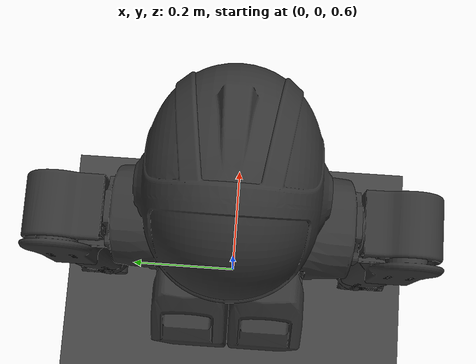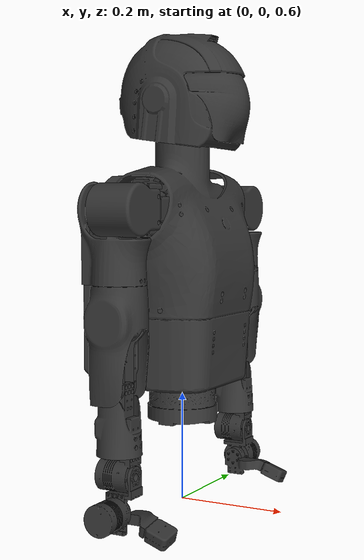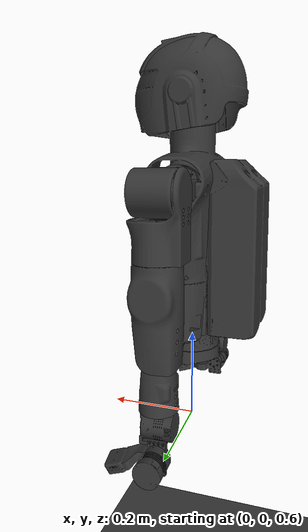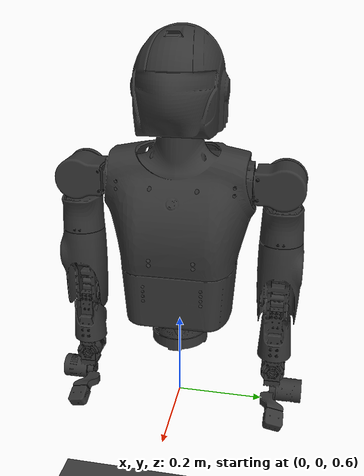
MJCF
<mujoco model="DARU_table_world">
  <compiler angle="radian" meshdir="" texturedir=""/>

  <default>
    <geom friction="1.0 0.5 0.01"/>
  </default>

  <asset>
    <texture name="grid" type="2d" builtin="checker" width="512" height="512"
            rgb1="0.2 0.2 0.2" rgb2="0.3 0.3 0.3" />
    <material name="floor_mat" texture="grid" texrepeat="200 200" specular="0.2" shininess="0.5" />
  </asset>

  <include file="DARU_stand.xml"/>

  <visual>
    <headlight ambient="0.7 0.7 0.7" diffuse="0.9 0.9 0.9" specular="0.4 0.4 0.4"/>
    <map znear="0.001" zfar="10"/>
  </visual>

  <worldbody>
    <light pos="0.5 0 3" dir="0 0 -1" diffuse="0.9 0.9 0.9"/>
    <geom name="floor" type="plane" size="100 100 0.1" material="floor_mat" />

  </worldbody>
</mujoco>

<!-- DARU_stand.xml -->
<mujoco model="DARU_stand">
  <compiler angle="radian"/>

  <asset>

    <mesh name="Base" content_type="model/stl" file="Base.stl"/>
    <mesh name="UB_Link" content_type="model/stl" file="UB_Link.stl"/>
    <mesh name="RSP_Link" content_type="model/stl" file="RSP_Link.stl"/>
    <mesh name="RSR_Link" content_type="model/stl" file="RSR_Link.stl"/>
    <mesh name="RSY_Link" content_type="model/stl" file="RSY_Link.stl"/>
    <mesh name="REP_Link" content_type="model/stl" file="REP_Link.stl"/>
    <mesh name="REY_Link" content_type="model/stl" file="REY_Link.stl"/>
    <mesh name="RWR_Link" content_type="model/stl" file="RWR_Link.stl"/>
    <mesh name="RWP_Link" content_type="model/stl" file="RWP_Link.stl"/>
    <mesh name="LSP_Link" content_type="model/stl" file="LSP_Link.stl"/>
    <mesh name="LSR_Link" content_type="model/stl" file="LSR_Link.stl"/>
    <mesh name="LSY_Link" content_type="model/stl" file="LSY_Link.stl"/>
    <mesh name="LEP_Link" content_type="model/stl" file="LEP_Link.stl"/>
    <mesh name="LEY_Link" content_type="model/stl" file="LEY_Link.stl"/>
    <mesh name="LWR_Link" content_type="model/stl" file="LWR_Link.stl"/>
    <mesh name="LWP_Link" content_type="model/stl" file="LWP_Link.stl"/>
    <mesh name="HY_Link" content_type="model/stl" file="HY_Link.stl"/>
    <mesh name="HP_Link" content_type="model/stl" file="HP_Link.stl"/>

    <material name="metal_silver"
            specular="0.5"
            shininess="1.0"
            reflectance="0.3"
            rgba="0.2 0.2 0.2 1"/>

  </asset>

<contact>
  <!-- trunk -->
  <exclude body1="Base"    body2="UB_Link"/>
  <exclude body1="UB_Link" body2="HY_Link"/>
  <exclude body1="HY_Link" body2="HP_Link"/>

  <!-- right arm (adjacent only) -->
  <exclude body1="UB_Link"  body2="RSP_Link"/>
  <exclude body1="RSP_Link" body2="RSR_Link"/>
  <exclude body1="RSR_Link" body2="RSY_Link"/>
  <exclude body1="RSY_Link" body2="REP_Link"/>
  <exclude body1="REP_Link" body2="REY_Link"/>
  <exclude body1="REY_Link" body2="RWR_Link"/>
  <exclude body1="RWR_Link" body2="RWP_Link"/>

  <!-- left arm (adjacent only) -->
  <exclude body1="UB_Link"  body2="LSP_Link"/>
  <exclude body1="LSP_Link" body2="LSR_Link"/>
  <exclude body1="LSR_Link" body2="LSY_Link"/>
  <exclude body1="LSY_Link" body2="LEP_Link"/>
  <exclude body1="LEP_Link" body2="LEY_Link"/>
  <exclude body1="LEY_Link" body2="LWR_Link"/>
  <exclude body1="LWR_Link" body2="LWP_Link"/>
</contact>

  <default>
    <default class="no_selfcol">
      <geom contype="0" conaffinity="0"/>
    </default>

    <default class="joint_mid">
      <joint damping="0.5" frictionloss="1.5"/>
    </default>
    <default class="joint_lo">
      <joint damping="0.01" frictionloss="0.1"/>
    </default>

    <default class="X12_150">
       <position kp="200" kv="10" forcerange="-150 150"/>
    </default>

    <default class="X6_60">
       <position kp="30" kv="0.8" forcerange="-60 60"/>
    </default>

    <default class="X4_10">
       <position kp="30" kv="0.8" forcerange="-10 10"/>
    </default>

    <default class="X2_07">
       <position kp="50" kv="2" forcerange="-7 7"/>
    </default>
  </default>

  <actuator>
    <!-- 허리 -->
    <position name="WY" class="X12_150" joint="Waist_Joint"
              ctrllimited="true" ctrlrange="-1.5708 1.5708"/>

    <!-- 오른팔 -->
    <position name="RSP" class="X6_60" joint="RSP_Joint"
              ctrllimited="true" ctrlrange="-4.460 0.837"/>
    <position name="RSR" class="X6_60" joint="RSR_Joint"
              ctrllimited="true" ctrlrange="-3.491 0.349"/>
    <position name="RSY" class="X6_60" joint="RSY_Joint"
              ctrllimited="true" ctrlrange="-2.87979 2.87979"/>
    <position name="REP" class="X6_60" joint="REP_Joint"
              ctrllimited="true" ctrlrange="-2.35619 0"/>
    <position name="REY" class="X4_10" joint="REY_Joint"
              ctrllimited="true" ctrlrange="-1.5708 1.5708"/>
    <position name="RWR" class="X4_10" joint="RWR_Joint"
              ctrllimited="true" ctrlrange="-1.5708 1.5708"/>
    <position name="RWP" class="X4_10" joint="RWP_Joint"
              ctrllimited="true" ctrlrange="-1.5708 1.5708"/>

    <!-- 왼팔 -->
    <position name="LSP" class="X6_60" joint="LSP_Joint"
              ctrllimited="true" ctrlrange="-4.460 0.8378"/>
    <position name="LSR" class="X6_60" joint="LSR_Joint"
              ctrllimited="true" ctrlrange="-0.349 3.491"/>
    <position name="LSY" class="X6_60" joint="LSY_Joint"
              ctrllimited="true" ctrlrange="-2.87979 2.87979"/>
    <position name="LEP" class="X6_60" joint="LEP_Joint"
              ctrllimited="true" ctrlrange="-2.35619 0"/>
    <position name="LEY" class="X4_10" joint="LEY_Joint"
              ctrllimited="true" ctrlrange="-1.5708 1.5708"/>
    <position name="LWR" class="X4_10" joint="LWR_Joint"
              ctrllimited="true" ctrlrange="-1.5708 1.5708"/>
    <position name="LWP" class="X4_10" joint="LWP_Joint"
              ctrllimited="true" ctrlrange="-1.5708 1.5708"/>

    <!-- 머리 -->
    <position name="HY" class="X2_07" joint="HY_Joint"
              ctrllimited="true" ctrlrange="-1.5708 1.5708"/>
    <position name="HP" class="X2_07" joint="HP_Joint"
              ctrllimited="true" ctrlrange="-0.785398 0.3316"/>
  </actuator>

  <worldbody>
    <body name="Base" pos="0 0 0.75">
      <inertial pos="0 0 0" quat="1 0 0 0" mass="5.0" diaginertia="0.1 0.1 0.1"/>
      <geom  class="no_selfcol" type="mesh" mesh="Base" contype="0" conaffinity="0" material="metal_silver"/>
      <body name="UB_Link">
        <inertial pos="-0.0507646 2.076e-05 0.269453" quat="0.999045 0.000129377 0.0436833 -0.000203278" mass="14.7807" diaginertia="0.274438 0.254941 0.146742"/>
        <joint class="joint_mid" name="Waist_Joint" pos="0 0 0" axis="0 0 1" range="-1.5708 1.5708" damping="0.0" frictionloss="0.0"/>
        <geom  class="no_selfcol" type="mesh" mesh="UB_Link" material="metal_silver"/>
        <body name="RSP_Link" pos="0 -0.225 0.3925">
          <inertial pos="0.00033313 0.00631764 0.00011791" quat="0.469401 0.470201 -0.526788 0.530159" mass="1.09643" diaginertia="0.00148436 0.00143505 0.00116252"/>
          <joint class="joint_mid" name="RSP_Joint" pos="0 0 0" axis="0 1 0" range="-4.460 0.837" damping="0.01" frictionloss="1.0"/>
          <geom  class="no_selfcol" type="mesh" mesh="RSP_Link" material="metal_silver"/>
          <body name="RSR_Link">
            <inertial pos="-0.00773789 -0.00013658 -0.0808405" quat="0.692031 -0.170654 -0.177473 0.678582" mass="1.1089" diaginertia="0.00200261 0.00190758 0.001159"/>
            <joint class="joint_mid" name="RSR_Joint" pos="0 0 0" axis="1 0 0" range="-3.491 0.349" damping="0.01" frictionloss="1.0"/>
            <geom  class="no_selfcol" type="mesh" mesh="RSR_Link" material="metal_silver"/>
            <body name="RSY_Link">
              <inertial pos="-0.00104042 -0.00328212 -0.191833" quat="0.998994 0.0254289 0.0349831 0.0118134" mass="1.31388" diaginertia="0.00303097 0.00294897 0.00136975"/>
              <joint class="joint_mid" name="RSY_Joint" pos="0 0 0" axis="0 0 1" range="-2.87979 2.87979" damping="0.01" frictionloss="1.0"/>
              <geom  class="no_selfcol" type="mesh" mesh="RSY_Link" material="metal_silver"/>
              <body name="REP_Link" pos="0 0 -0.3">
                <inertial pos="-0.0013698 -3.287e-05 -0.0692101" quat="0.726958 -0.0147117 -0.0142461 0.686377" mass="0.442059" diaginertia="0.00080198 0.000775082 0.000248848"/>
                <joint class="joint_mid" name="REP_Joint" pos="0 0 0" axis="0 1 0" range="-2.35619 0" damping="0.01" frictionloss="1.0"/>
                <geom  class="no_selfcol" type="mesh" mesh="REP_Link" material="metal_silver"/>
                <body name="REY_Link">
                  <inertial pos="0.00267605 -5.449e-05 -0.144684" quat="0.661611 0.191342 0.155231 0.708211" mass="0.306356" diaginertia="0.000192415 0.000178187 0.000163848"/>
                  <joint class="joint_mid" name="REY_Joint" pos="0 0 0" axis="0 0 1" range="-1.5708 1.5708" damping="0.01" frictionloss="1.0"/>
                  <geom  class="no_selfcol" type="mesh" mesh="REY_Link" material="metal_silver"/>
                  <body name="RWR_Link" pos="0 0 -0.148">
                    <inertial pos="0.00297563 -0.0284565 -0.0553425" quat="0.917533 -0.288581 0.219655 0.163111" mass="0.329053" diaginertia="0.000333126 0.000317397 0.000167577"/>
                    <joint class="joint_mid" name="RWR_Joint" pos="0 0 0" axis="1 0 0" range="-1.5708 1.5708" damping="0.01" frictionloss="1.0"/>
                    <geom  class="no_selfcol" type="mesh" mesh="RWR_Link" material="metal_silver"/>
                    <body name="RWP_Link" pos="0 0 -0.0625">
                      <inertial pos="0.0431291 -0.00434224 -0.0143786" quat="-0.166252 0.740498 -0.250776 0.600945" mass="0.108733" diaginertia="0.000178378 0.000173519 2.43732e-05"/>
                      <joint class="joint_mid" name="RWP_Joint" pos="0 0 0" axis="0 1 0" range="-1.5708 1.5708" damping="0.01" frictionloss="1.0"/>
                      <geom  class="no_selfcol" type="mesh" mesh="RWP_Link" material="metal_silver"/>
                    </body>
                  </body>
                </body>
              </body>
            </body>
          </body>
        </body>
        <body name="LSP_Link" pos="0 0.225 0.3925">
          <inertial pos="0.00023229 -0.00621771 -0.00015876" quat="0.524908 0.534257 -0.466047 0.471" mass="1.09329" diaginertia="0.00146957 0.00142974 0.00115004"/>
          <joint class="joint_mid" name="LSP_Joint" pos="0 0 0" axis="0 1 0" range="-4.460 0.8378" damping="0.01" frictionloss="1.0"/>
          <geom  class="no_selfcol" type="mesh"  mesh="LSP_Link" material="metal_silver"/>
          <body name="LSR_Link">
            <inertial pos="-0.00773794 -0.00013656 -0.0808405" quat="0.692032 -0.170655 -0.177474 0.678581" mass="1.1089" diaginertia="0.00200261 0.0019076 0.00115899"/>
            <joint class="joint_mid" name="LSR_Joint" pos="0 0 0" axis="1 0 0" range="-0.349 3.491" damping="0.01" frictionloss="1.0"/>
            <geom  class="no_selfcol" type="mesh"  mesh="LSR_Link" material="metal_silver"/>
            <body name="LSY_Link">
              <inertial pos="-0.00129204 0.00333021 -0.19157" quat="0.99714 -0.0219468 0.0377979 0.061652" mass="1.30782" diaginertia="0.00300549 0.0029214 0.00136631"/>
              <joint class="joint_mid" name="LSY_Joint" pos="0 0 0" axis="0 0 1" range="-2.87979 2.87979" damping="0.01" frictionloss="1.0"/>
              <geom  class="no_selfcol" type="mesh"  mesh="LSY_Link" material="metal_silver"/>
              <body name="LEP_Link" pos="0 0 -0.3">
                <inertial pos="-0.00136083 3.812e-05 -0.06921" quat="0.690403 -0.0141392 -0.0146771 0.723138" mass="0.442059" diaginertia="0.000802411 0.000774652 0.000248867"/>
                <joint class="joint_mid" name="LEP_Joint" pos="0 0 0" axis="0 1 0" range="-2.35619 0" damping="0.01" frictionloss="1.0"/>
                <geom  class="no_selfcol" type="mesh"  mesh="LEP_Link" material="metal_silver"/>
                <body name="LEY_Link">
                  <inertial pos="0.00267605 -0.00012191 -0.144582" quat="0.670867 0.136457 0.134863 0.71633" mass="0.306356" diaginertia="0.000195047 0.000176732 0.000162241"/>
                  <joint class="joint_mid" name="LEY_Joint" pos="0 0 0" axis="0 0 1" range="-1.5708 1.5708" damping="0.01" frictionloss="1.0"/>
                  <geom  class="no_selfcol" type="mesh"  mesh="LEY_Link" material="metal_silver"/>
                  <body name="LWR_Link" pos="0 0 -0.148">
                    <inertial pos="0.0029249 0.0293125 -0.0554304" quat="0.903175 0.281632 0.242805 -0.214485" mass="0.329053" diaginertia="0.000336821 0.000321128 0.000167"/>
                    <joint class="joint_mid" name="LWR_Joint" pos="0 0 0" axis="1 0 0" range="-1.5708 1.5708" damping="0.01" frictionloss="1.0"/>
                    <geom  class="no_selfcol" type="mesh"  mesh="LWR_Link" material="metal_silver"/>
                    <body name="LWP_Link" pos="0 0 -0.0625">
                      <inertial pos="0.0431343 0.00528524 -0.0143643" quat="0.16844 0.739926 0.252005 0.600526" mass="0.108733" diaginertia="0.000178364 0.000173494 2.43421e-05"/>
                      <joint class="joint_mid" name="LWP_Joint" pos="0 0 0" axis="0 1 0" range="-1.5708 1.5708" damping="0.01" frictionloss="1.0"/>
                      <geom  class="no_selfcol" type="mesh"  mesh="LWP_Link" material="metal_silver"/>
                    </body>
                  </body>
                </body>
              </body>
            </body>
          </body>
        </body>
        <body name="HY_Link" pos="0 0 0.5855">
          <inertial pos="-0.00136668 -0.00281064 -0.0163791" quat="0.709902 0.686287 0.119444 -0.103836" mass="0.0824974" diaginertia="6.43821e-05 5.72521e-05 4.95557e-05"/>
          <joint class="joint_mid" name="HY_Joint" pos="0 0 0" axis="0 0 1" range="-1.5708 1.5708" damping="0.01" frictionloss="1.0"/>
          <geom  class="no_selfcol" type="mesh" mesh="HY_Link" material="metal_silver"/>
          <body name="HP_Link">
            <inertial pos="0.0113946 -0.00069587 0.032575" quat="0.935722 0.00167622 -0.35249 -0.0131194" mass="0.94946" diaginertia="0.00662813 0.00602591 0.00512292"/>
            <joint class="joint_mid" name="HP_Joint" pos="0 0 0" axis="0 1 0" range="-0.785398 0.3316" damping="0.01" frictionloss="1.0"/>
            <geom  class="no_selfcol" type="mesh" mesh="HP_Link" material="metal_silver"/>
            <camera name="front_cam"
              pos="0.08 0 -0.08"
              euler="0 -1.0708 -1.5708"
              fovy="58"/>
          </body>
        </body>
      </body>
    </body>
  </worldbody>
</mujoco>
